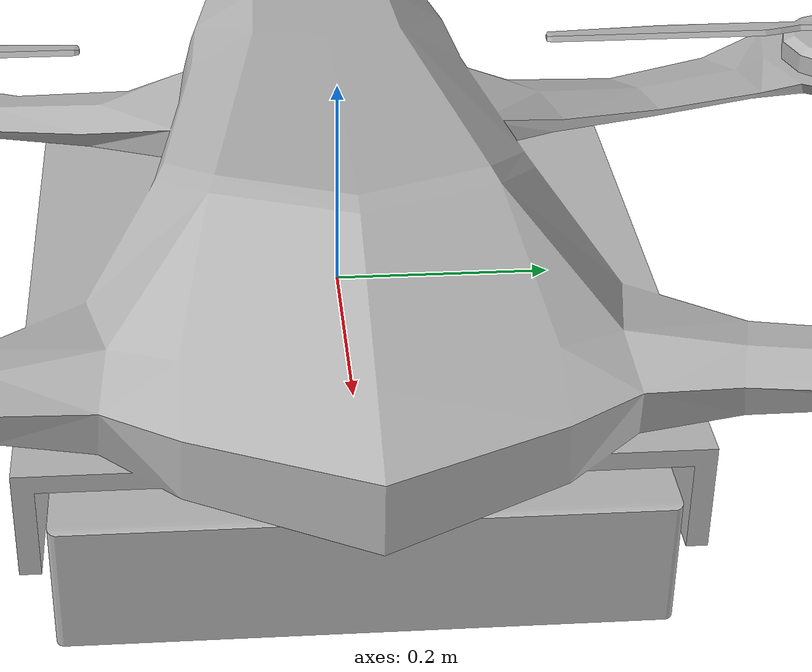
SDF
<?xml version="1.0" ?>
<sdf version="1.6">
  <model name="drone_with_box">
    <include>
      <name>drone</name>
      <uri>model://drone_ariac</uri>
    </include>
    <static>true</static>
    <link name="box_link">
      <visual name="box_visual">
        <pose>0 0 -0.13 0 0 1.5707</pose>
        <geometry>
          <mesh>
            <scale>1.1 1.8 0.25</scale>
            <uri>model://closed_box_ariac/meshes/closed_box.obj</uri>
          </mesh>
        </geometry>
        <plugin name="toggle" filename="libToggleVisualPlugin.so">
          <initially_visible>false</initially_visible>
          <topic>~/drone_box_visual_toggle</topic>
        </plugin>
      </visual>
    </link>
  </model>
</sdf>

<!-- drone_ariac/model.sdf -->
<sdf version="1.6">
  <model name="drone">
    <static>true</static>
    <link name="link">
      <pose>0 0 0 0 0 -1.5707</pose>
      <collision name="collision">
        <geometry>
          <mesh>
            <scale>1.3 1.3 1.0</scale>
            <uri>model://drone_ariac/meshes/Drone.dae</uri>
          </mesh>
        </geometry>
      </collision>
      <visual name="visual">
        <geometry>
          <mesh>
            <scale>1.3 1.3 1.0</scale>
            <uri>model://drone_ariac/meshes/Drone.dae</uri>
          </mesh>
        </geometry>
      </visual>
    </link>
  </model>
</sdf>
